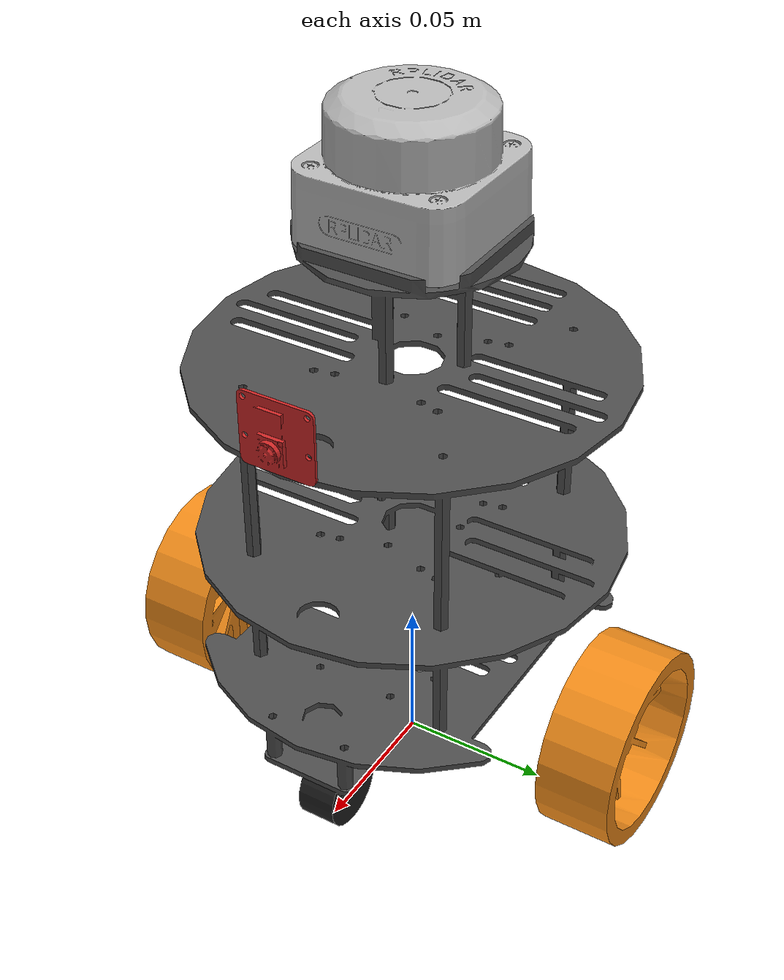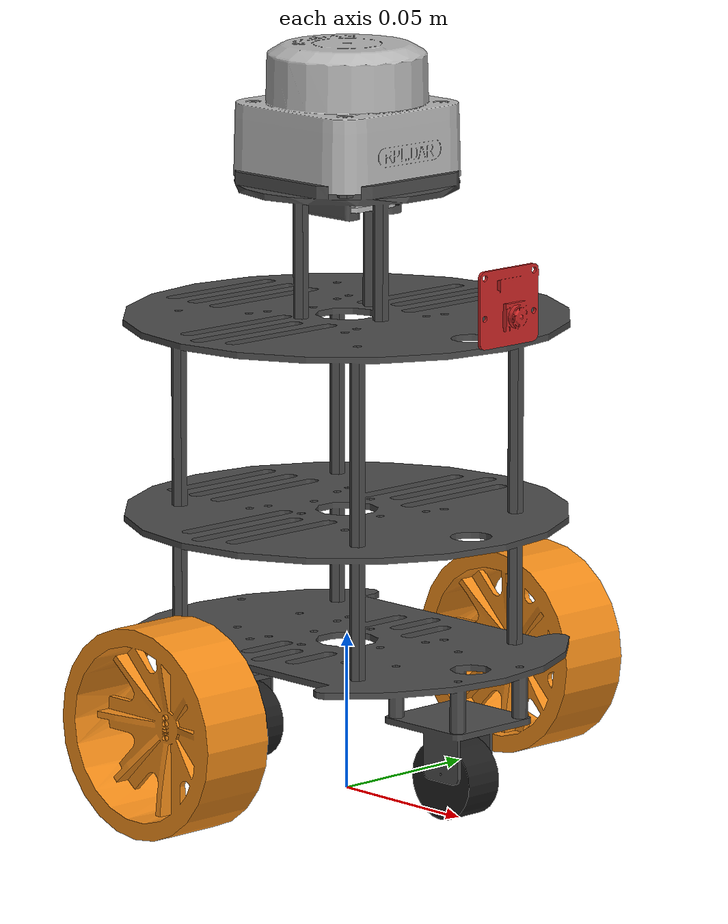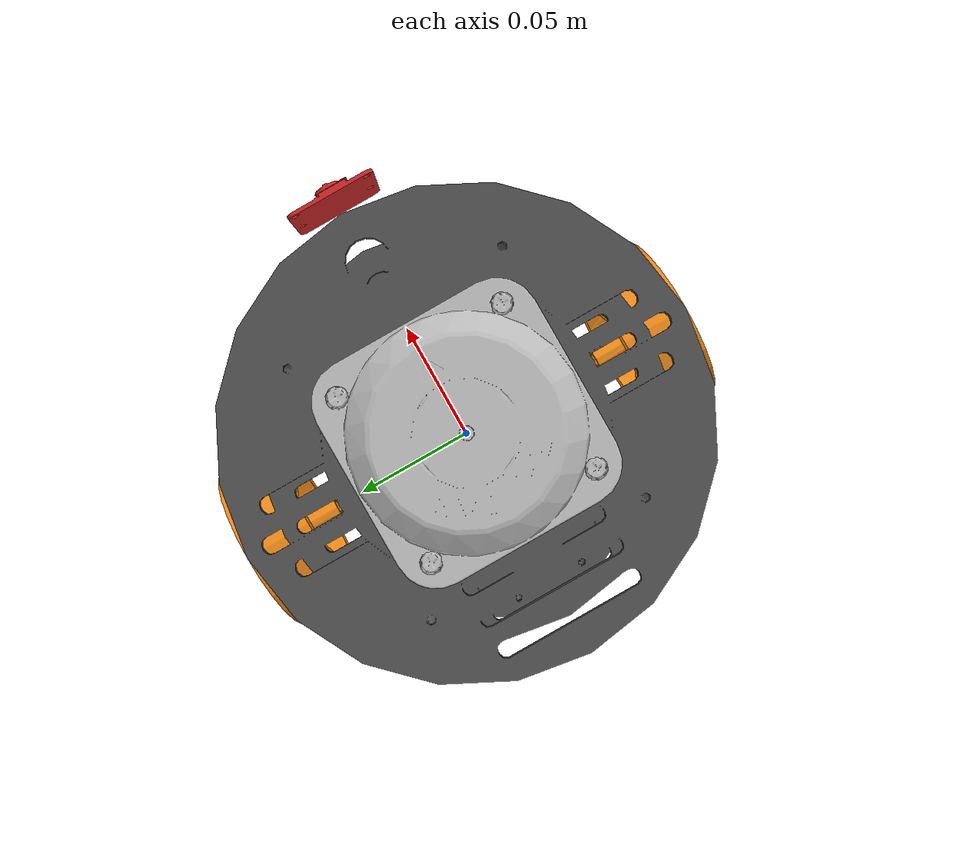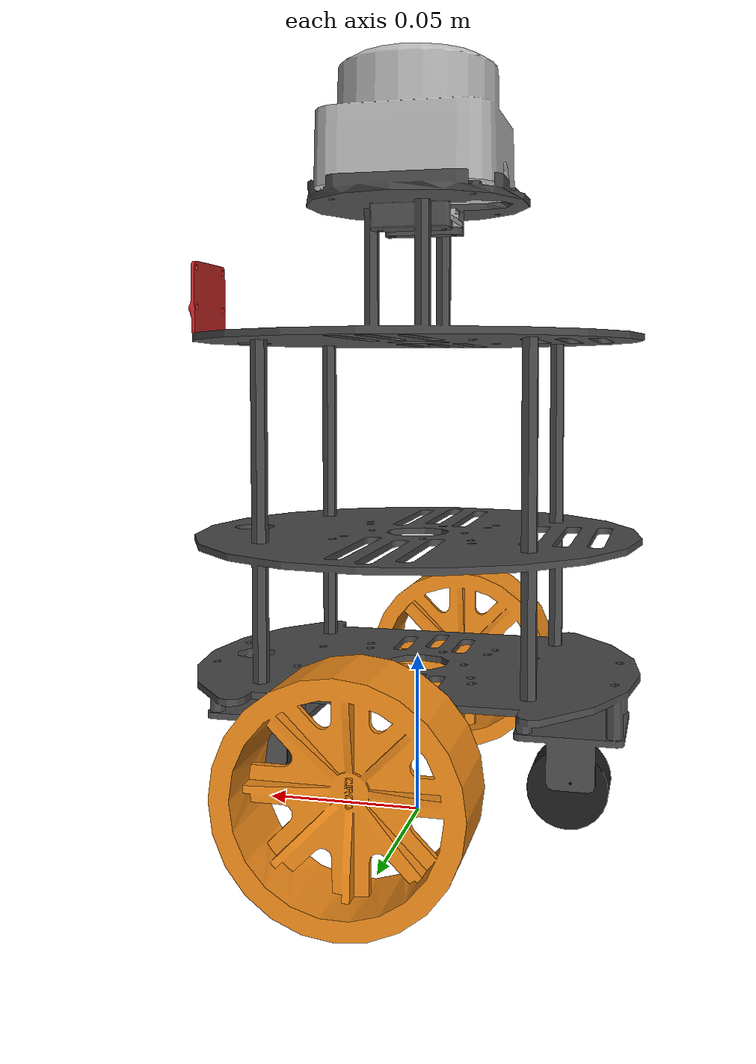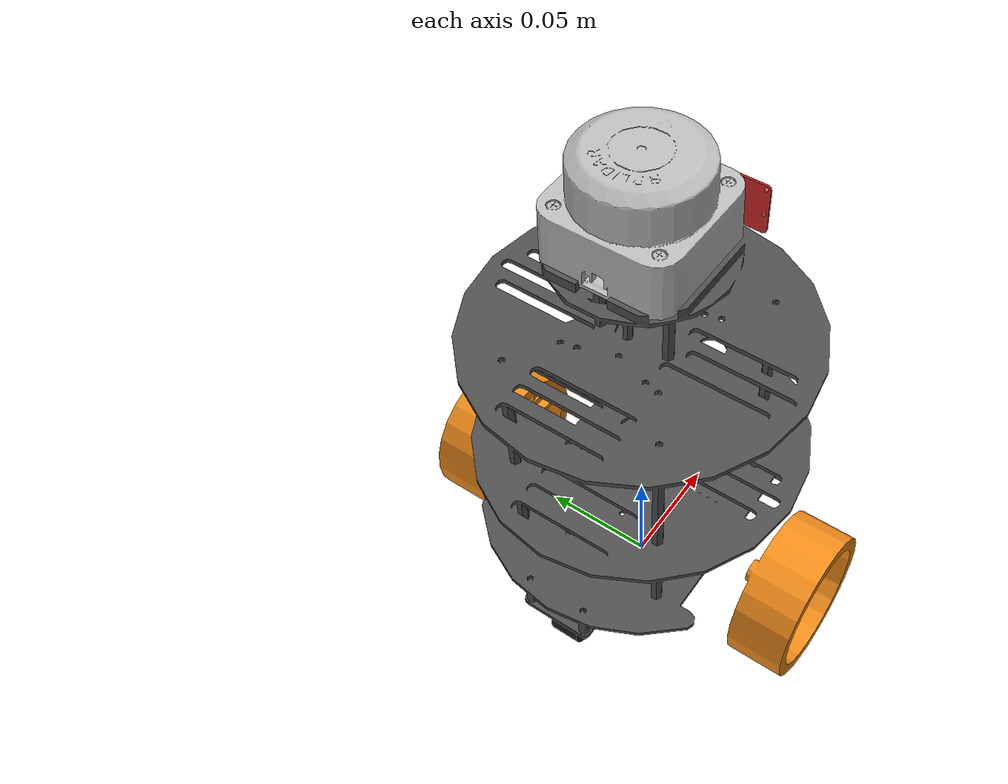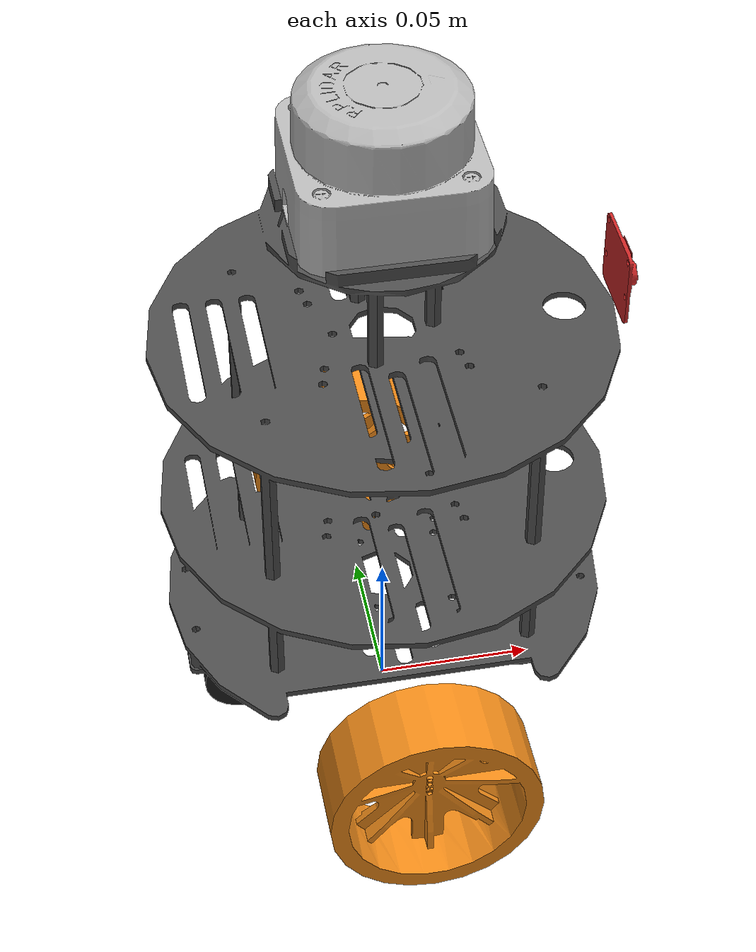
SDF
<?xml version="1.0" ?>
<sdf version='1.6'>
  <model name='my_robot'>
    <link name='base_footprint'>
      <inertial>
        <pose>2e-06 0 0.074739 0 -0 0</pose>
        <mass>1500.2</mass>
        <inertia>
          <ixx>7.41845</ixx>
          <ixy>-6.19668e-22</ixy>
          <ixz>-0.000312412</ixz>
          <iyy>8.59482</iyy>
          <iyz>0</iyz>
          <izz>4.48214</izz>
        </inertia>
      </inertial>
      <collision name='base_footprint_fixed_joint_lump__base_link_collision'>
        <pose>0 0 0.10525 0 -0 0</pose>
        <geometry>
          <cylinder>
            <length>0.1855</length>
            <radius>0.07</radius>
          </cylinder>
        </geometry>
        <surface>
          <contact>
            <ode/>
          </contact>
          <friction>
            <ode/>
          </friction>
        </surface>
      </collision>
      <collision name='base_footprint_fixed_joint_lump__camera_collision_1'>
        <pose>0.07 0 0.164 1.5708 -0 0</pose>
        <geometry>
          <box>
            <size>0.025 0.025 0.01</size>
          </box>
        </geometry>
        <surface>
          <contact>
            <ode/>
          </contact>
          <friction>
            <ode/>
          </friction>
        </surface>
      </collision>
      <collision name='base_footprint_fixed_joint_lump__front_caster_wheel_link_collision_2'>
        <pose>0.0485 0 0.01267 0 -0 0</pose>
        <geometry>
          <sphere>
            <radius>0.0125</radius>
          </sphere>
        </geometry>
        <surface>
          <contact>
            <ode/>
          </contact>
          <friction>
            <ode/>
          </friction>
        </surface>
      </collision>
      <collision name='base_footprint_fixed_joint_lump__bno055_collision_3'>
        <pose>0 0 0.1885 0 -0 1.5708</pose>
        <geometry>
          <box>
            <size>0.02 0.025 0.0045</size>
          </box>
        </geometry>
      </collision>
      <collision name='base_footprint_fixed_joint_lump__laser_collision_4'>
        <pose>0 0 0.21615 0 -0 0</pose>
        <geometry>
          <cylinder>
            <length>0.0413</length>
            <radius>0.0348</radius>
          </cylinder>
        </geometry>
      </collision>
      <collision name='base_footprint_fixed_joint_lump__rear_caster_wheel_link_collision_5'>
        <pose>-0.0485 0 0.01267 0 -0 0</pose>
        <geometry>
          <sphere>
            <radius>0.0125</radius>
          </sphere>
        </geometry>
        <surface>
          <contact>
            <ode/>
          </contact>
          <friction>
            <ode/>
          </friction>
        </surface>
      </collision>
      <visual name='base_footprint_fixed_joint_lump__base_link_visual'>
        <pose>0 0 0.15 1.5708 -0 1.5708</pose>
        <geometry>
          <mesh>
            <scale>0.001 0.001 0.001</scale>
            <uri>model://meshes/my_robot_base.stl</uri>
          </mesh>
        </geometry>
        <material>
          <script>
            <name>Gazebo/DarkGrey</name>
            <uri>file://media/materials/scripts/gazebo.material</uri>
          </script>
        </material>
      </visual>
      <visual name='base_footprint_fixed_joint_lump__camera_visual_1'>
        <pose>0.07 0 0.164 1.5708 -0 0</pose>
        <geometry>
          <mesh>
            <scale>0.001 0.001 0.001</scale>
            <uri>model://meshes/cam_v2_1_v1.stl</uri>
          </mesh>
        </geometry>
        <material>
          <script>
            <name>Gazebo/Red</name>
            <uri>file://media/materials/scripts/gazebo.material</uri>
          </script>
        </material>
      </visual>
      <visual name='base_footprint_fixed_joint_lump__front_caster_wheel_link_visual_2'>
        <pose>0.0485 0.0065 0.01267 0 0 -1.5708</pose>
        <geometry>
          <mesh>
            <scale>0.001 0.001 0.001</scale>
            <uri>model://meshes/caster_wheel.stl</uri>
          </mesh>
        </geometry>
        <material>
          <script>
            <name>Gazebo/FlatBlack</name>
            <uri>file://media/materials/scripts/gazebo.material</uri>
          </script>
        </material>
      </visual>
      <visual name='base_footprint_fixed_joint_lump__bno055_visual_3'>
        <pose>0 0 0.18625 0 -0 0</pose>
        <geometry>
          <mesh>
            <scale>0.001 0.001 0.001</scale>
            <uri>model://meshes/adafruit_bno055_stemma_qt_1.stl</uri>
          </mesh>
        </geometry>
      </visual>
      <visual name='base_footprint_fixed_joint_lump__laser_visual_4'>
        <pose>0 0 0.1955 0 -0 0</pose>
        <geometry>
          <mesh>
            <scale>0.001 0.001 0.001</scale>
            <uri>model://meshes/c1m1_appearance_v2_20230926_3d_.stl</uri>
          </mesh>
        </geometry>
      </visual>
      <visual name='base_footprint_fixed_joint_lump__rear_caster_wheel_link_visual_5'>
        <pose>-0.0485 0.0065 0.01267 0 0 -1.5708</pose>
        <geometry>
          <mesh>
            <scale>0.001 0.001 0.001</scale>
            <uri>model://meshes/caster_wheel.stl</uri>
          </mesh>
        </geometry>
        <material>
          <script>
            <name>Gazebo/FlatBlack</name>
            <uri>file://media/materials/scripts/gazebo.material</uri>
          </script>
        </material>
      </visual>
      <sensor name='camera' type='camera'>
        <visualize>1</visualize>
        <update_rate>30</update_rate>
        <camera>
          <horizontal_fov>1.0856</horizontal_fov>
          <image>
            <width>640</width>
            <height>480</height>
            <format>R8G8B8</format>
          </image>
          <clip>
            <near>0.05</near>
            <far>3</far>
          </clip>
        </camera>
        <plugin name='camera_controller' filename='libgazebo_ros_camera.so'>
          <alwaysOn>1</alwaysOn>
          <imageTopicName>image_raw/compressed</imageTopicName>
          <frame_name>camera_optical</frame_name>
        </plugin>
        <pose>0.07 0 0.159 0 -0 0</pose>
      </sensor>
      <m1 value='10.0'/>
      <m2 value='10.0'/>
      <m1 value='10.0'/>
      <m2 value='10.0'/>
    </link>
    <joint name='base_left_wheel_joint' type='revolute'>
      <pose relative_to='base_footprint'>0 0.0775 0.033 1.5708 0 0</pose>
      <parent>base_footprint</parent>
      <child>left_wheel_link</child>
      <axis>
        <xyz>0 0 -1</xyz>
        <limit>
          <lower>-1e+16</lower>
          <upper>1e+16</upper>
        </limit>
        <dynamics>
          <spring_reference>0</spring_reference>
          <spring_stiffness>0</spring_stiffness>
        </dynamics>
      </axis>
    </joint>
    <link name='left_wheel_link'>
      <pose relative_to='base_left_wheel_joint'>0 0 0 0 -0 0</pose>
      <inertial>
        <pose>0 0 0 0 -0 0</pose>
        <mass>500</mass>
        <inertia>
          <ixx>0.162167</ixx>
          <ixy>0</ixy>
          <ixz>0</ixz>
          <iyy>0.162167</iyy>
          <iyz>0</iyz>
          <izz>0.27225</izz>
        </inertia>
      </inertial>
      <collision name='left_wheel_link_collision'>
        <pose>0 0 0 0 -0 0</pose>
        <geometry>
          <sphere>
            <radius>0.033</radius>
          </sphere>
        </geometry>
        <surface>
          <contact>
            <ode/>
          </contact>
          <friction>
            <ode/>
          </friction>
        </surface>
      </collision>
      <visual name='left_wheel_link_visual'>
        <pose>0 0 -0.0125 1.5708 -0 0</pose>
        <geometry>
          <mesh>
            <scale>0.001 0.001 0.001</scale>
            <uri>model://meshes/wheel.stl</uri>
          </mesh>
        </geometry>
        <material>
          <script>
            <name>Gazebo/Orange</name>
            <uri>file://media/materials/scripts/gazebo.material</uri>
          </script>
        </material>
      </visual>
      <m1 value='10.0'/>
      <m2 value='10.0'/>
    </link>
    <joint name='base_right_wheel_joint' type='revolute'>
      <pose relative_to='base_footprint'>0 -0.0775 0.033 -1.5708 0 0</pose>
      <parent>base_footprint</parent>
      <child>right_wheel_link</child>
      <axis>
        <xyz>0 0 1</xyz>
        <limit>
          <lower>-1e+16</lower>
          <upper>1e+16</upper>
        </limit>
        <dynamics>
          <spring_reference>0</spring_reference>
          <spring_stiffness>0</spring_stiffness>
        </dynamics>
      </axis>
    </joint>
    <link name='right_wheel_link'>
      <pose relative_to='base_right_wheel_joint'>0 0 0 0 -0 0</pose>
      <inertial>
        <pose>0 0 0 0 -0 0</pose>
        <mass>500</mass>
        <inertia>
          <ixx>0.162167</ixx>
          <ixy>0</ixy>
          <ixz>0</ixz>
          <iyy>0.162167</iyy>
          <iyz>0</iyz>
          <izz>0.27225</izz>
        </inertia>
      </inertial>
      <collision name='right_wheel_link_collision'>
        <pose>0 0 0 0 -0 0</pose>
        <geometry>
          <sphere>
            <radius>0.033</radius>
          </sphere>
        </geometry>
        <surface>
          <contact>
            <ode/>
          </contact>
          <friction>
            <ode/>
          </friction>
        </surface>
      </collision>
      <visual name='right_wheel_link_visual'>
        <pose>0 0 -0.0125 1.5708 -0 0</pose>
        <geometry>
          <mesh>
            <scale>0.001 0.001 0.001</scale>
            <uri>model://meshes/wheel.stl</uri>
          </mesh>
        </geometry>
        <material>
          <script>
            <name>Gazebo/Orange</name>
            <uri>file://media/materials/scripts/gazebo.material</uri>
          </script>
        </material>
      </visual>
      <m1 value='10.0'/>
      <m2 value='10.0'/>
    </link>

    <plugin name="diff_drive_controller" filename="libgazebo_ros_diff_drive.so">
      <ros>
        <namespace>/my_robot</namespace>
        <remapping>cmd_vel:=/cmd_vel_out</remapping>
        <remapping>odom:=/odom</remapping>
      </ros>
      <robotNamespace>/my_robot</robotNamespace>
      <left_joint>base_left_wheel_joint</left_joint>
      <right_joint>base_right_wheel_joint</right_joint>
      <wheel_separation>0.155</wheel_separation>
      <wheel_diameter>0.066</wheel_diameter>
      <update_rate>100.0</update_rate>
      <max_velocity>1.0</max_velocity>
    </plugin>

    <plugin name="joint_state_publisher" filename="libgazebo_ros_joint_state_publisher.so">
        <namespace>/my_robot</namespace>
        <joint_name>base_left_wheel_joint</joint_name>
        <joint_name>base_right_wheel_joint</joint_name>
        <remapping>joint_states:=/joint_states</remapping>
        <joint_state_source>sensor</joint_state_source>
        <update_rate>100.0</update_rate>
        <alwaysOn>true</alwaysOn>
    </plugin>

  </model>
</sdf>
